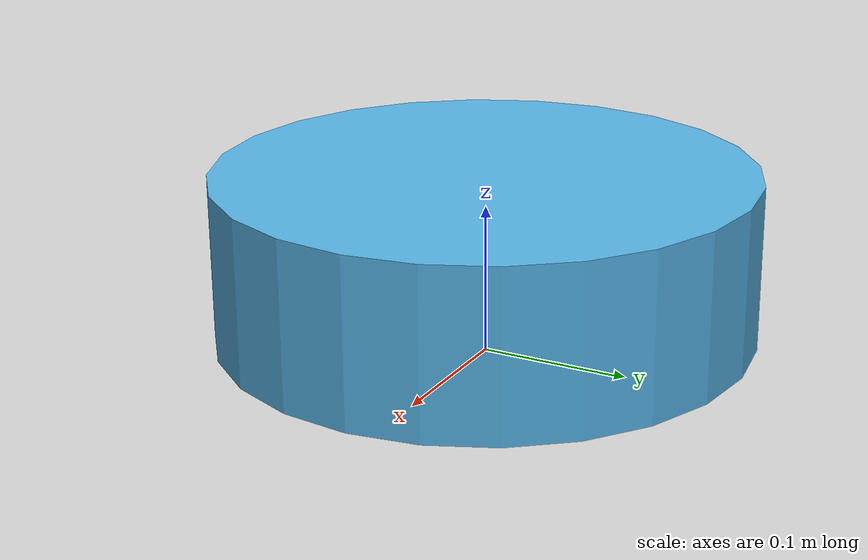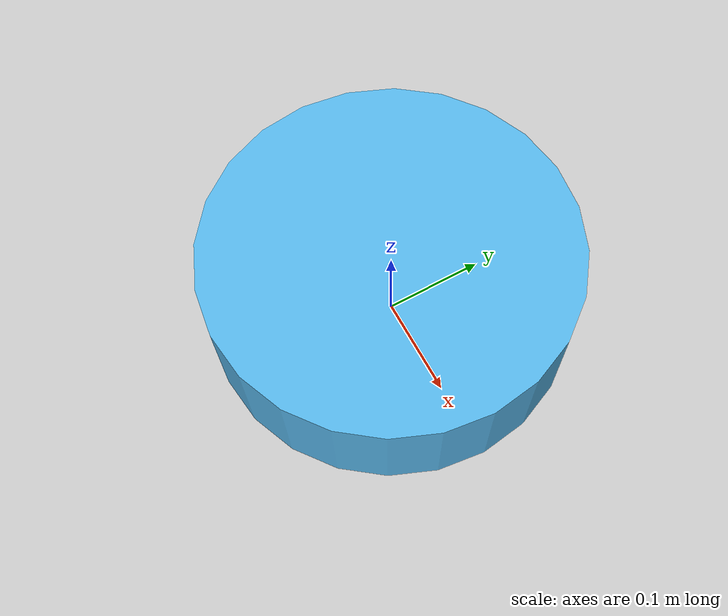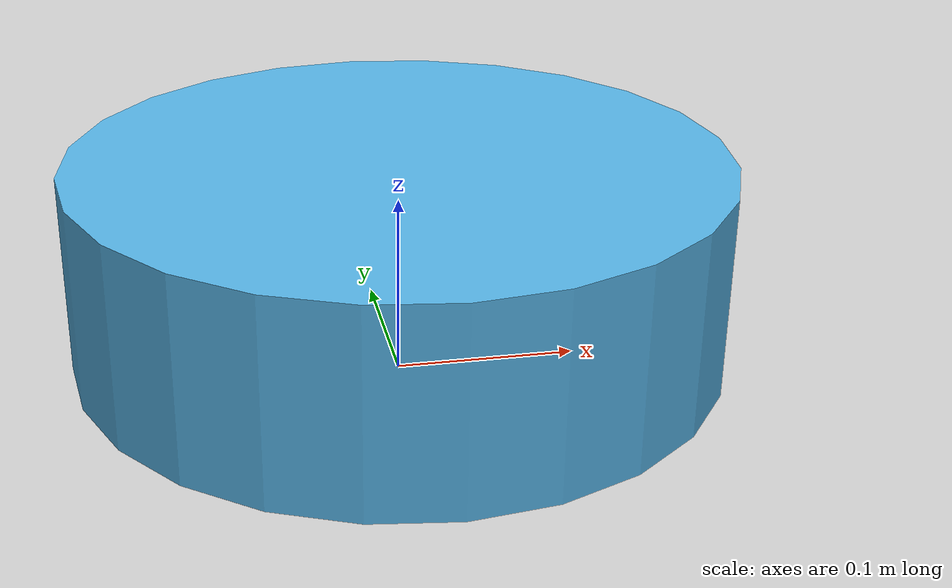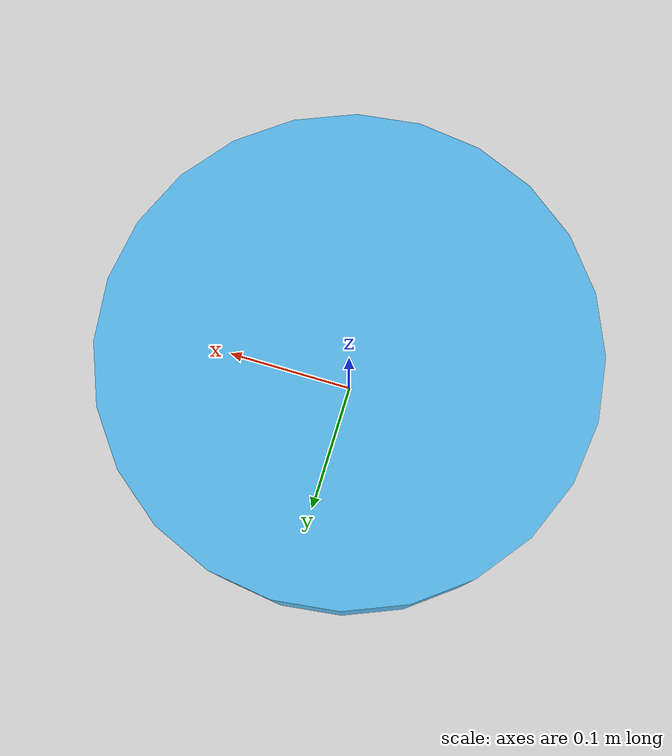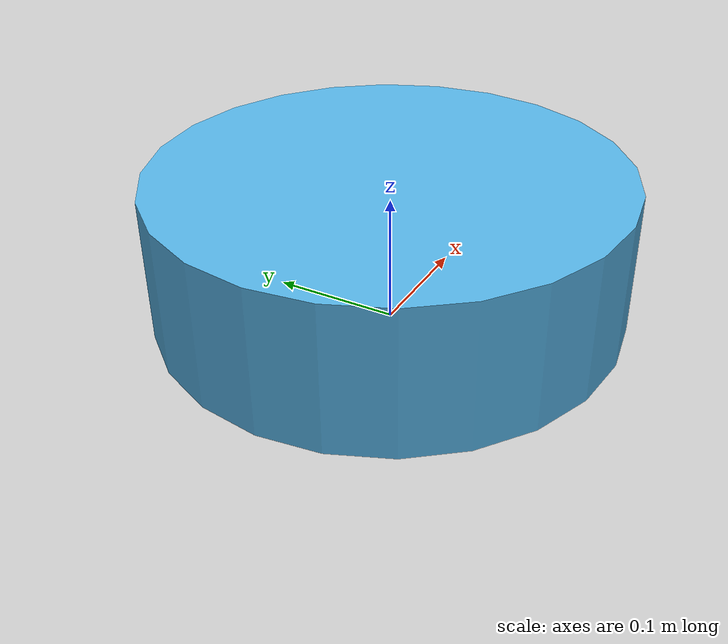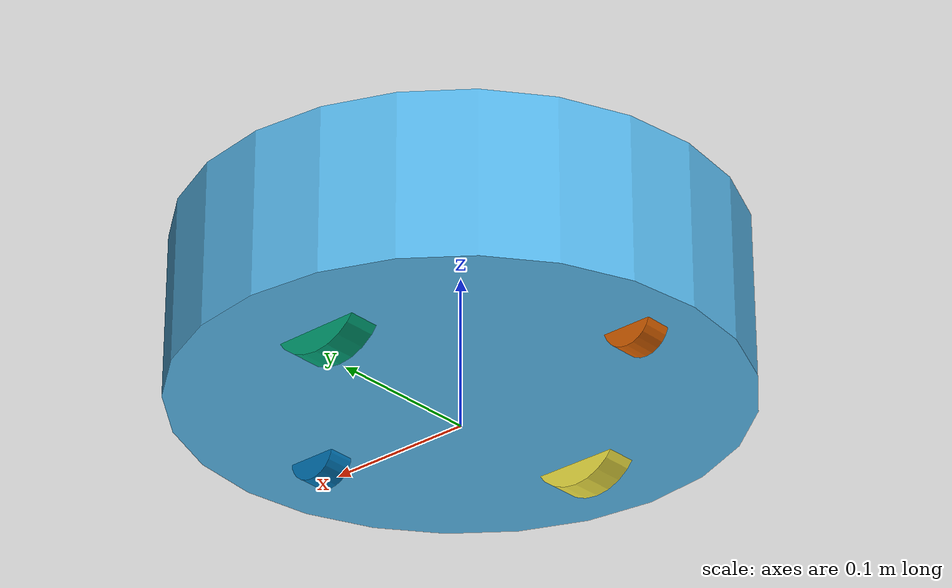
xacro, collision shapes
<?xml version="1.0"?>
<!--
    - Base      : kobuki
    - Stacks    : hexagons
    - 3d Sensor : kinect
-->
<robot name="turtlebot" xmlns:xacro="http://ros.org/wiki/xacro">

  <xacro:include filename="$(find turtlebot_description)/urdf/kobuki/kobuki.urdf.xacro" />
  <xacro:kobuki />

</robot>

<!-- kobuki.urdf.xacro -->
<robot name="kobuki_robot" xmlns:xacro="http://ros.org/wiki/xacro">

  <!-- Kobuki -->
  <xacro:macro name="kobuki">
    <link name="base_footprint"/>
    <joint name="base_joint" type="fixed">
      <origin xyz="0 0 0.0102" rpy="0 0 0" />
      <parent link="base_footprint"/>
      <child link="base_link" />
    </joint>
    <link name="base_link">
      <visual>
        <geometry>
          <!-- new mesh -->
          <mesh filename="package://kobuki_description/meshes/main_body.dae" />
        </geometry>
        <origin xyz="0.001 0 0.05199" rpy="0 0 0"/>
      </visual>
      <collision name="base">
        <geometry>
          <cylinder length="0.10938" radius="0.178"/>
        </geometry>
        <origin xyz="0.0 0 0.05949" rpy="0 0 0"/>
      </collision>
      <inertial>
        <!-- COM experimentally determined -->
        <origin xyz="0.01 0 0"/>
        <mass value="2.4"/> <!-- 2.4/2.6 kg for small/big battery pack -->
        <inertia ixx="0.019995" ixy="0.0" ixz="0.0"
                 iyy="0.019995" iyz="0.0"
                 izz="0.03675" />
      </inertial>
    </link>

    <joint name="wheel_left_joint" type="continuous">
      <parent link="base_link"/>
      <child link="wheel_left_link"/>
      <origin xyz="0.00 ${0.23/2} 0.0250" rpy="${-M_PI/2} 0 0"/>
      <axis xyz="0 0 1"/>
    </joint>
    <link name="wheel_left_link">
      <visual>
        <geometry>
          <mesh filename="package://kobuki_description/meshes/wheel.dae"/>
        </geometry>
        <origin xyz="0 0 0" rpy="0 0 0"/>
      </visual>
      <collision>
        <geometry>
          <cylinder length="0.0206" radius="0.0352"/>
        </geometry>
        <origin rpy="0 0 0" xyz="0 0 0"/>
      </collision>
      <inertial>
        <mass value="0.01" />
        <origin xyz="0 0 0" />
        <inertia ixx="0.001" ixy="0.0" ixz="0.0"
                 iyy="0.001" iyz="0.0"
                 izz="0.001" />
      </inertial>
    </link>

    <joint name="wheel_right_joint" type="continuous">
      <parent link="base_link"/>
      <child link="wheel_right_link"/>
      <origin xyz="0.00 -${0.23/2} 0.0250" rpy="${-M_PI/2} 0 0"/>
      <axis xyz="0 0 1"/>
    </joint>
    <link name="wheel_right_link">
      <visual>
        <geometry>
          <mesh filename="package://kobuki_description/meshes/wheel.dae"/>
        </geometry>
        <origin xyz="0 0 0" rpy="0 0 0"/>
      </visual>
      <collision>
        <geometry>
          <cylinder length="0.0206" radius="0.0350"/>
        </geometry>
        <origin rpy="0 0 0" xyz="0 0 0"/>
      </collision>
      <inertial>
        <mass value="0.01" />
        <origin xyz="0 0 0" />
        <inertia ixx="0.001" ixy="0.0" ixz="0.0"
                 iyy="0.001" iyz="0.0"
                 izz="0.001" />
      </inertial>
    </link>

    <joint name="caster_front_joint" type="fixed">
      <parent link="base_link"/>
      <child link="caster_front_link"/>
      <origin xyz="0.115 0.0 0.007" rpy="${-M_PI/2} 0 0"/>
    </joint>
    <link name="caster_front_link">
      <collision>
        <geometry>
          <cylinder length="0.0176" radius="0.017"/>
        </geometry>
        <origin rpy="0 0 0" xyz="0 0 0"/>
      </collision>
      <inertial>
        <mass value="0.01" />
        <origin xyz="0 0 0" />
        <inertia ixx="0.001" ixy="0.0" ixz="0.0"
                 iyy="0.001" iyz="0.0"
                 izz="0.001" />
      </inertial>
    </link>

    <joint name="caster_back_joint" type="fixed">
      <parent link="base_link"/>
      <child link="caster_back_link"/>
      <origin xyz="-0.135 0.0 0.009" rpy="${-M_PI/2} 0 0"/>
    </joint>
    <link name="caster_back_link">
      <collision>
        <geometry>
          <cylinder length="0.0176" radius="0.017"/>
        </geometry>
        <origin rpy="0 0 0" xyz="0 0 0"/>
      </collision>
      <inertial>
        <mass value="0.01" />
        <origin xyz="0 0 0" />
        <inertia ixx="0.001" ixy="0.0" ixz="0.0"
                 iyy="0.001" iyz="0.0"
                 izz="0.001" />
      </inertial>
    </link>

    <!-- Kobuki's sensors -->
    <joint name="gyro_joint" type="fixed">
      <axis xyz="0 1 0"/>
      <origin xyz="0.056 0.062 0.0202" rpy="0 0 0"/>
      <parent link="base_link"/>
      <child link="gyro_link"/>
    </joint>
    <link name="gyro_link">
      <inertial>
        <mass value="0.001"/>
        <origin xyz="0 0 0" rpy="0 0 0"/>
        <inertia ixx="0.0001" ixy="0" ixz="0"
                 iyy="0.000001" iyz="0"
                 izz="0.0001"/>
      </inertial>
    </link>

    <joint name="cliff_sensor_left_joint" type="fixed">
      <origin xyz="0.08734 0.13601 0.0214" rpy="0 ${M_PI/2} 0" />
      <parent link="base_link"/>
      <child link="cliff_sensor_left_link" />
    </joint>
    <link name="cliff_sensor_left_link">
      <inertial>
        <mass value="0.0001" />
        <origin xyz="0 0 0" />
        <inertia ixx="0.0001" ixy="0.0" ixz="0.0"
                 iyy="0.0001" iyz="0.0"
                 izz="0.0001" />
      </inertial>
    </link>

    <joint name="cliff_sensor_right_joint" type="fixed">
      <origin xyz="0.085 -0.13601 0.0214" rpy="0 ${M_PI/2} 0" />
      <parent link="base_link"/>
      <child link="cliff_sensor_right_link" />
    </joint>
    <link name="cliff_sensor_right_link">
      <inertial>
        <mass value="0.0001" />
        <origin xyz="0 0 0" />
        <inertia ixx="0.0001" ixy="0.0" ixz="0.0"
                 iyy="0.0001" iyz="0.0"
                 izz="0.0001" />
      </inertial>
    </link>

    <joint name="cliff_sensor_front_joint" type="fixed">
      <origin xyz="0.156 0.00 0.0214" rpy="0 ${M_PI/2} 0" />
      <parent link="base_link"/>
      <child link="cliff_sensor_front_link" />
    </joint>
    <link name="cliff_sensor_front_link">
      <inertial>
        <mass value="0.0001" />
        <origin xyz="0 0 0" />
        <inertia ixx="0.0001" ixy="0.0" ixz="0.0"
                 iyy="0.0001" iyz="0.0"
                 izz="0.0001" />
      </inertial>
    </link>

    <!-- Kobuki Gazebo simulation details -->
    <gazebo reference="wheel_left_link">
	    <mu1>1.0</mu1>
	    <mu2>1.0</mu2>
	    <kp>1000000.0</kp>
	    <kd>100.0</kd>
	    <minDepth>0.001</minDepth>
	    <maxVel>1.0</maxVel>
	  </gazebo>

	  <gazebo reference="wheel_right_link">
	    <mu1>1.0</mu1>
	    <mu2>1.0</mu2>
	    <kp>1000000.0</kp>
	    <kd>100.0</kd>
	    <minDepth>0.001</minDepth>
	    <maxVel>1.0</maxVel>
	  </gazebo>

	  <gazebo reference="caster_front_link">
	    <mu1>0.0</mu1>
	    <mu2>0.0</mu2>
	    <kp>1000000.0</kp>
	    <kd>100.0</kd>
	    <minDepth>0.001</minDepth>
	    <maxVel>1.0</maxVel>
	  </gazebo>

	  <gazebo reference="caster_back_link">
	    <mu1>0.0</mu1>
	    <mu2>0.0</mu2>
	    <kp>1000000.0</kp>
	    <kd>100.0</kd>
	    <minDepth>0.001</minDepth>
	    <maxVel>1.0</maxVel>
	  </gazebo>

	  <gazebo reference="base_link">
	    <mu1>0.3</mu1>
	    <mu2>0.3</mu2>
	    <sensor type="contact" name="bumpers">
	      <always_on>true</always_on>
	      <update_rate>50.0</update_rate>
	      <visualize>true</visualize>
	      <contact>
	        <collision>base_footprint_fixed_joint_lump__base_collision</collision>
	      </contact>
              <plugin name="bumper_plugin" filename="libgazebo_ros_bumper.so">
                <bumperTopicName>contact_state</bumperTopicName>
              </plugin>
	    </sensor>

	  </gazebo>

	  <gazebo reference="cliff_sensor_left_link">
	    <sensor type="ray" name="cliff_sensor_left">
	      <always_on>true</always_on>
	      <update_rate>50</update_rate>
	      <visualize>true</visualize>
	      <ray>
	        <scan>
	          <horizontal>
	            <samples>50</samples>
	            <resolution>1.0</resolution>
	            <min_angle>-0.0436</min_angle>  <!-- -2.5 degree -->
	            <max_angle>0.0436</max_angle> <!-- 2.5 degree -->
	          </horizontal>
	        </scan>
	        <range>
	          <min>0.01</min>
	          <max>0.15</max>
	          <resolution>1.0</resolution>
	        </range>
	      </ray>
	    </sensor>
	  </gazebo>

	  <gazebo reference="cliff_sensor_right_link">
	    <sensor type="ray" name="cliff_sensor_right">
	      <always_on>true</always_on>
	      <update_rate>50</update_rate>
	      <visualize>true</visualize>
	      <ray>
	        <scan>
	          <horizontal>
	            <samples>50</samples>
	            <resolution>1.0</resolution>
	            <min_angle>-0.0436</min_angle>  <!-- -2.5 degree -->
	            <max_angle>0.0436</max_angle> <!-- 2.5 degree -->
	          </horizontal>
	        </scan>
	        <range>
	          <min>0.01</min>
	          <max>0.15</max>
	          <resolution>1.0</resolution>
	        </range>
	      </ray>
	    </sensor>
	  </gazebo>

	  <gazebo reference="cliff_sensor_front_link">
	    <sensor type="ray" name="cliff_sensor_front">
	      <always_on>true</always_on>
	      <update_rate>50</update_rate>
	      <visualize>true</visualize>
	      <ray>
	        <scan>
	          <horizontal>
	            <samples>50</samples>
	            <resolution>1.0</resolution>
	            <min_angle>-0.0436</min_angle>  <!-- -2.5 degree -->
	            <max_angle>0.0436</max_angle> <!-- 2.5 degree -->
	          </horizontal>
	        </scan>
	        <range>
	          <min>0.01</min>
	          <max>0.15</max>
	          <resolution>1.0</resolution>
	        </range>
	      </ray>
	    </sensor>
	  </gazebo>

	  <gazebo reference="gyro_link">
	   <sensor type="imu" name="imu">
        <always_on>true</always_on>
        <update_rate>50</update_rate>
        <visualize>false</visualize>
        <imu>
          <noise>
            <type>gaussian</type>
	          <rate>
	            <mean>0.0</mean>
	            <stddev>${0.0014*0.0014}</stddev> <!-- 0.25 x 0.25 (deg/s) -->
	            <bias_mean>0.0</bias_mean>
	            <bias_stddev>0.0</bias_stddev>
	          </rate>
		        <accel> <!-- not used in the plugin and real robot, hence using tutorial values -->
			        <mean>0.0</mean>
			        <stddev>1.7e-2</stddev>
			        <bias_mean>0.1</bias_mean>
			        <bias_stddev>0.001</bias_stddev>
		        </accel>
          </noise>
	      </imu>
      </sensor>
	  </gazebo>

	  <gazebo>
	    <plugin name="kobuki_controller" filename="libgazebo_ros_kobuki.so">
	      <publish_tf>1</publish_tf>
	      <left_wheel_joint_name>wheel_left_joint</left_wheel_joint_name>
	      <right_wheel_joint_name>wheel_right_joint</right_wheel_joint_name>
	      <wheel_separation>.230</wheel_separation>
	      <wheel_diameter>0.070</wheel_diameter>
	      <torque>1.0</torque>
	      <velocity_command_timeout>0.6</velocity_command_timeout>
	      <cliff_sensor_left_name>cliff_sensor_left</cliff_sensor_left_name>
	      <cliff_sensor_center_name>cliff_sensor_front</cliff_sensor_center_name>
	      <cliff_sensor_right_name>cliff_sensor_right</cliff_sensor_right_name>
	      <cliff_detection_threshold>0.04</cliff_detection_threshold>
	      <bumper_name>bumpers</bumper_name>
        <imu_name>imu</imu_name>
	    </plugin>
	  </gazebo>
  </xacro:macro>

</robot>
